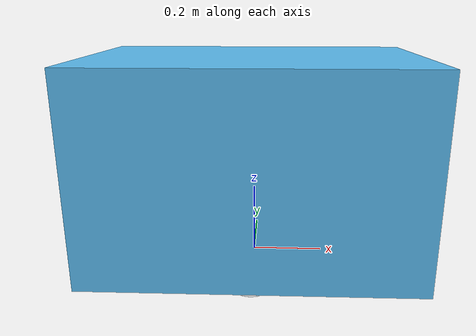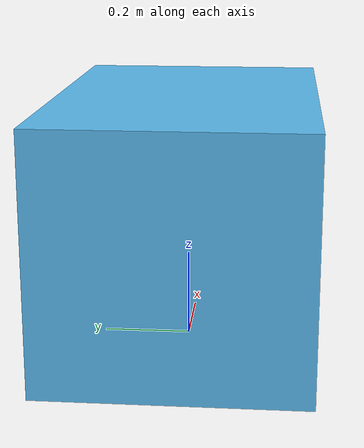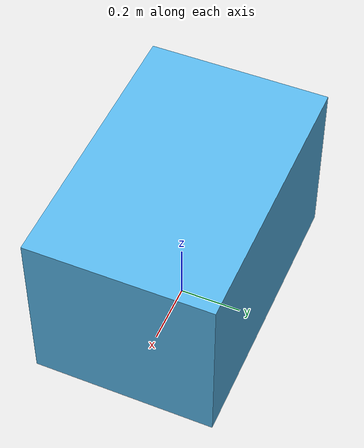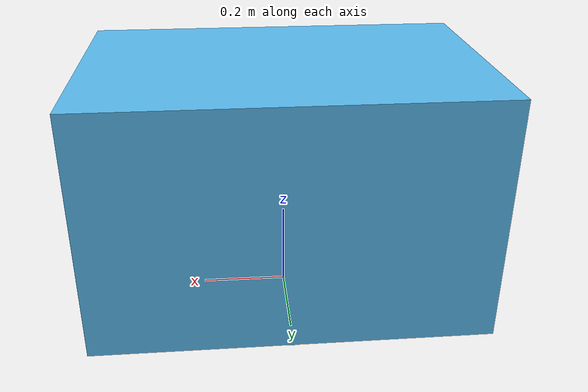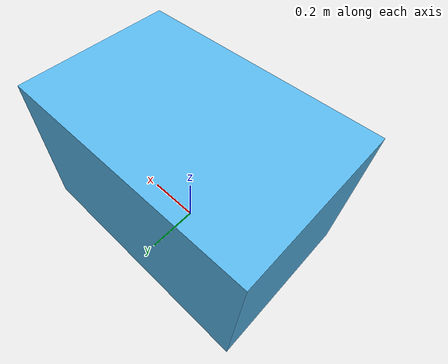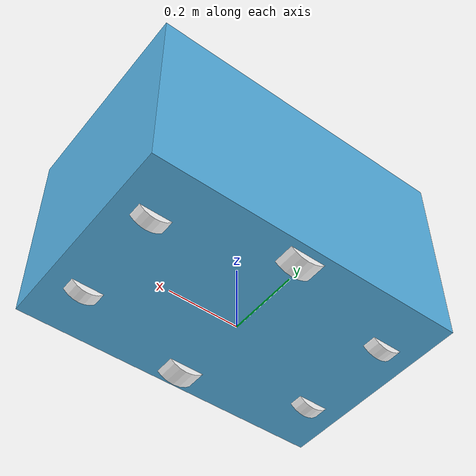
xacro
<?xml version="1.0" ?>
<robot name="basic_mobile_bot" xmlns:xacro="http://ros.org/wiki/xacro">

  <xacro:property name="base_width" value="0.56"/>
  <xacro:property name="base_length" value="0.9"/>
  <xacro:property name="base_height" value="0.585"/>

  <xacro:property name="wheel_radius" value="0.075"/>
  <xacro:property name="wheel_width" value="0.06"/>
  <xacro:property name="wheel_ygap" value="0.24"/>
  <xacro:property name="wheel_zoff" value="0.0"/>
  <xacro:property name="wheel_xoff" value="0.0"/>

  <xacro:property name="caster_radius" value="0.06"/>
  <xacro:property name="caster_width" value="0.04"/>
  <xacro:property name="caster_xoff" value="0.35"/>
  <xacro:property name="caster_ygap" value="0.1425"/>
  <xacro:property name="caster_zoff" value="0.015"/>

  <xacro:macro name="box_inertia" params="m w h d">
    <inertial>
      <origin xyz="0 0 0" rpy="${pi/2} 0 ${pi/2}"/>
      <mass value="${m}"/>
      <inertia ixx="${(m/12) * (h*h + d*d)}" ixy="0.0" ixz="0.0" iyy="${(m/12) * (w*w + d*d)}" iyz="0.0" izz="${(m/12) * (w*w + h*h)}"/>
    </inertial>
  </xacro:macro>

  <xacro:macro name="cylinder_inertia" params="m r h">
    <inertial>
      <origin xyz="0 0 0" rpy="${pi/2} 0 0" />
      <mass value="${m}"/>
      <inertia ixx="${(m/12) * (3*r*r + h*h)}" ixy = "0" ixz = "0" iyy="${(m/12) * (3*r*r + h*h)}" iyz = "0" izz="${(m/2) * (r*r)}"/>
    </inertial>
  </xacro:macro>

  <link name="base_footprint"/>

  <joint name="base_joint" type="fixed">
    <parent link="base_footprint"/>
    <child link="base_link" />
    <origin xyz="0.0 0.0 ${wheel_radius}" rpy="0 0 0"/>
  </joint>

  <!-- ********************** ROBOT BASE *********************************  -->
  <link name="base_link">
    <visual>
      <origin xyz="0.0 0.0 0.225" rpy="1.5707963267949 0 3.141592654"/>
      <geometry>
        <box size="${base_length} ${base_width} ${base_height}"/>
      </geometry>
    </visual>
    <collision>
      <origin xyz="0.0 0.0 0.225" rpy="1.5707963267949 0 3.141592654"/>
      <geometry>
        <box size="${base_length} ${base_width} ${base_height}"/>
      </geometry>
    </collision>

    <xacro:box_inertia m="15" w="${base_width}" d="${base_length}" h="${base_height}"/>

  </link>

  <!-- *********************** DRIVE WHEELS ******************************  -->

  <xacro:macro name="wheel" params="prefix x_reflect y_reflect">
    <link name="${prefix}_link">
      <visual>
        <origin xyz="0 0 0" rpy="1.5707963267949 0 0"/>
        <geometry>
            <cylinder radius="${wheel_radius}" length="${wheel_width}"/>
        </geometry>
        <material name="White">
          <color rgba="${255/255} ${255/255} ${255/255} 1.0"/>
        </material>
      </visual>

      <collision>
        <origin xyz="0 0 0" rpy="${pi/2} 0 0"/>
        <geometry>
          <cylinder radius="${wheel_radius}" length="${wheel_width}"/>
        </geometry>
      </collision>

      <xacro:cylinder_inertia m="110.5" r="${wheel_radius}" h="${wheel_width}"/>

    </link>

    <joint name="${prefix}_joint" type="revolute">
      <parent link="base_link"/>
      <child link="${prefix}_link"/>
      <origin xyz="${x_reflect*wheel_xoff} ${y_reflect*wheel_ygap} ${-wheel_zoff}" rpy="0 0 0"/>
      <limit upper="3.1415" lower="-3.1415" effort="30" velocity="5.0"/>
      <axis xyz="0 1 0"/>
    </joint>
  </xacro:macro>

  <xacro:wheel prefix="drivewhl_l" x_reflect="-1" y_reflect="1" />
  <xacro:wheel prefix="drivewhl_r" x_reflect="-1" y_reflect="-1" />

  <!-- *********************** Caster ******************************  -->

  <xacro:macro name="caster" params="prefix x_reflect y_reflect">
    <link name="${prefix}_link">
      <visual>
        <origin xyz="0 0 0" rpy="1.5707963267949 0 0"/>
        <geometry>
            <cylinder radius="${caster_radius}" length="${caster_width}"/>
        </geometry>
        <material name="White">
          <color rgba="${255/255} ${255/255} ${255/255} 1.0"/>
        </material>
      </visual>

      <collision>
        <origin xyz="0 0 0" rpy="${pi/2} 0 0"/>
        <geometry>
          <cylinder radius="${caster_radius}" length="${caster_width}"/>
        </geometry>
      </collision>
      <xacro:cylinder_inertia m="80.5" r="${caster_radius}" h="${caster_width}"/>
    </link>

    <joint name="${prefix}_joint" type="revolute">
      <parent link="base_link"/>
      <child link="${prefix}_link"/>
      <origin xyz="${x_reflect*caster_xoff} ${y_reflect*caster_ygap} ${-caster_zoff}" rpy="0 0 0"/>
      <limit upper="3.1415" lower="-3.1415" effort="30" velocity="5.0"/>
      <axis xyz="0 1 0"/>
    </joint>
  </xacro:macro>

  <xacro:caster prefix="caster_lf" x_reflect="1" y_reflect="1"/>
  <xacro:caster prefix="caster_rf" x_reflect="1" y_reflect="-1"/>
  <xacro:caster prefix="caster_lb" x_reflect="-1" y_reflect="1"/>
  <xacro:caster prefix="caster_rb" x_reflect="-1" y_reflect="-1"/>

  <joint name="imu_joint" type="fixed">
    <parent link="base_link"/>
    <child link="imu_link"/>
    <origin xyz="0 0 0.13" rpy="0 0 0"/>
  </joint>

  <link name="imu_link"/>

  <joint name="lidarf_joint" type="fixed">
    <parent link="base_link"/>
    <child link="lidarf_link"/>
    <origin xyz="0.41 -0.24 0.140" rpy="0 0 0"/>
  </joint>

  <link name="lidarf_link"/>

  <joint name="lidarb_joint" type="fixed">
    <parent link="base_link"/>
    <child link="lidarb_link"/>
    <origin xyz="-0.41 0.24 0.140" rpy="0 0 1.57"/>
  </joint>

  <link name="lidarb_link"/>

  <joint name="lidar_joint3" type="fixed">
    <origin rpy="0 0 0.0" xyz="0.0 0.0 0.140"/>
    <parent link="base_link"/>
    <child link="lidar_merged"/>
  </joint>

  <link name="lidar_merged"/>

  <gazebo reference="imu_link">
    <sensor name="imu_sensor" type="imu">
      <plugin filename="libgazebo_ros_imu_sensor.so" name="imu_plugin">
        <ros>
          <namespace>/demo</namespace>
          <remapping>~/out:=imu</remapping>
        </ros>
        <initial_orientation_as_reference>false</initial_orientation_as_reference>
      </plugin>
      <always_on>true</always_on>
      <update_rate>100</update_rate>
      <visualize>true</visualize>
     <imu>
     	<angular_velocity>
     	  <x>
     	    <noise type="gaussian">
              <mean>0.0</mean>
              <stddev>2e-4</stddev>
              <bias_mean>0.0000075</bias_mean>
              <bias_stddev>0.0000008</bias_stddev>
            </noise>
          </x>
          <y>
            <noise type="gaussian">
              <mean>0.0</mean>
              <stddev>2e-4</stddev>
              <bias_mean>0.0000075</bias_mean>
              <bias_stddev>0.0000008</bias_stddev>
            </noise>
          </y>
          <z>
            <noise type="gaussian">
              <mean>0.0</mean>
              <stddev>2e-4</stddev>
              <bias_mean>0.0000075</bias_mean>
              <bias_stddev>0.0000008</bias_stddev>
            </noise>
          </z>
        </angular_velocity>
        <linear_acceleration>
          <x>
            <noise type="gaussian">
              <mean>0.0</mean>
              <stddev>1.7e-2</stddev>
              <bias_mean>0.1</bias_mean>
              <bias_stddev>0.001</bias_stddev>
            </noise>
          </x>
          <y>
            <noise type="gaussian">
              <mean>0.0</mean>
              <stddev>1.7e-2</stddev>
              <bias_mean>0.1</bias_mean>
              <bias_stddev>0.001</bias_stddev>
            </noise>
          </y>
          <z>
            <noise type="gaussian">
              <mean>0.0</mean>
              <stddev>1.7e-2</stddev>
              <bias_mean>0.1</bias_mean>
              <bias_stddev>0.001</bias_stddev>
            </noise>
          </z>
        </linear_acceleration>
      </imu>
    </sensor>
  </gazebo>

  <gazebo>
    <plugin name='diff_drive' filename='libgazebo_ros_diff_drive.so'>
      <ros>
        <namespace>/demo</namespace>
      </ros>

      <!-- wheels -->
      <left_joint>drivewhl_l_joint</left_joint>
      <right_joint>drivewhl_r_joint</right_joint>

      <!-- kinematics -->
      <wheel_separation>0.4</wheel_separation>
      <wheel_diameter>0.2</wheel_diameter>

      <!-- limits -->
      <max_wheel_torque>20</max_wheel_torque>
      <max_wheel_acceleration>1.0</max_wheel_acceleration>

      <!-- output -->
      <publish_odom>true</publish_odom>
      <publish_odom_tf>false</publish_odom_tf>
      <publish_wheel_tf>true</publish_wheel_tf>

      <odometry_frame>odom</odometry_frame>
      <robot_base_frame>base_link</robot_base_frame>
    </plugin>
  </gazebo>

    <gazebo reference="lidar_link">
    <sensor name="lidar" type="ray">
      <always_on>true</always_on>
      <visualize>true</visualize>
      <update_rate>5</update_rate>
      <ray>
        <scan>
          <horizontal>
            <samples>360</samples>
            <resolution>1.000000</resolution>
            <min_angle>0.000000</min_angle>
            <max_angle>6.280000</max_angle>
          </horizontal>
        </scan>
        <range>
          <min>0.120000</min>
          <max>3.5</max>
          <resolution>0.015000</resolution>
        </range>
        <noise>
          <type>gaussian</type>
          <mean>0.0</mean>
          <stddev>0.01</stddev>
        </noise>
      </ray>
      <plugin name="scan" filename="libgazebo_ros_ray_sensor.so">
        <ros>
          <remapping>~/out:=scan</remapping>
        </ros>
        <output_type>sensor_msgs/LaserScan</output_type>
        <frame_name>lidar_link</frame_name>
      </plugin>
    </sensor>
  </gazebo>

</robot>
